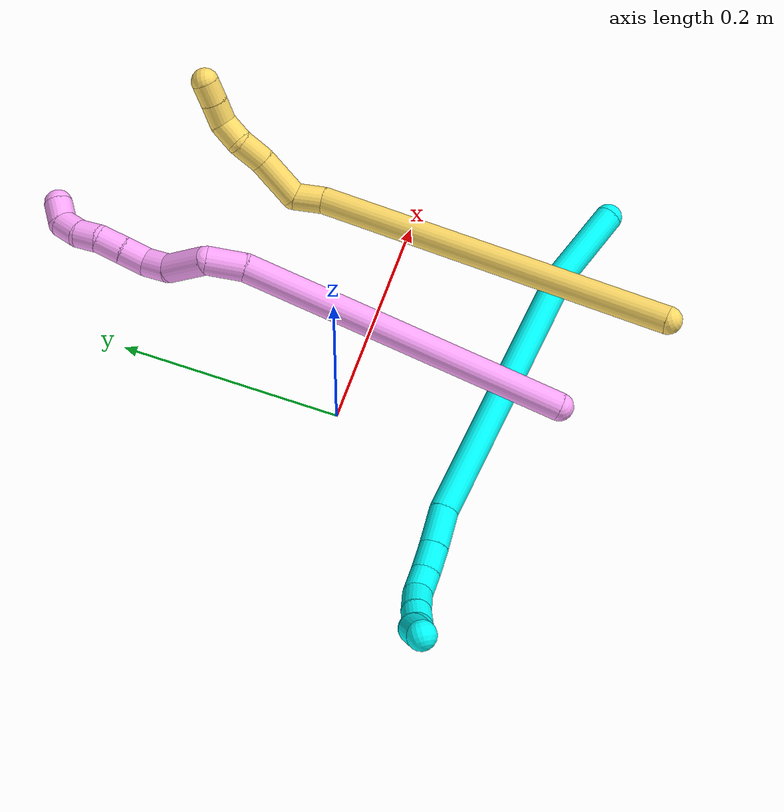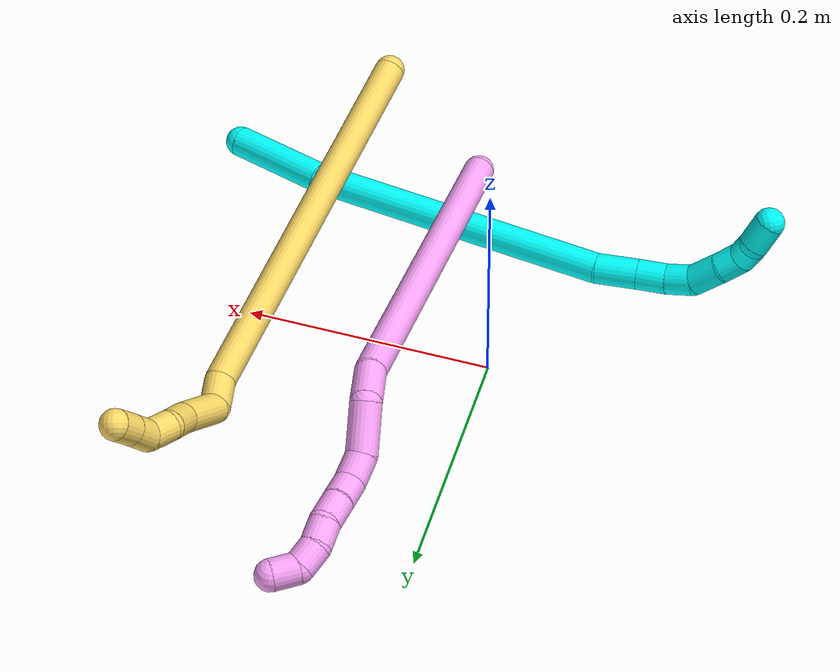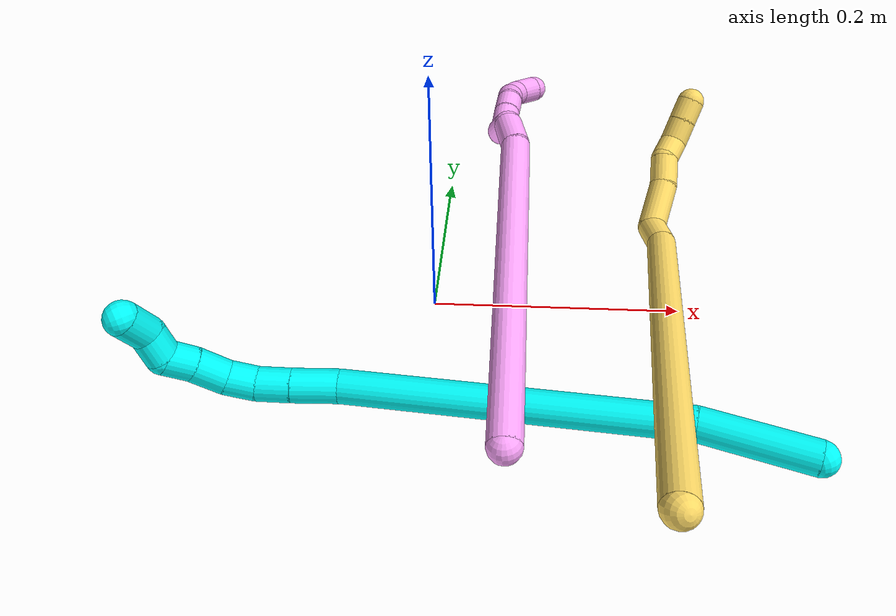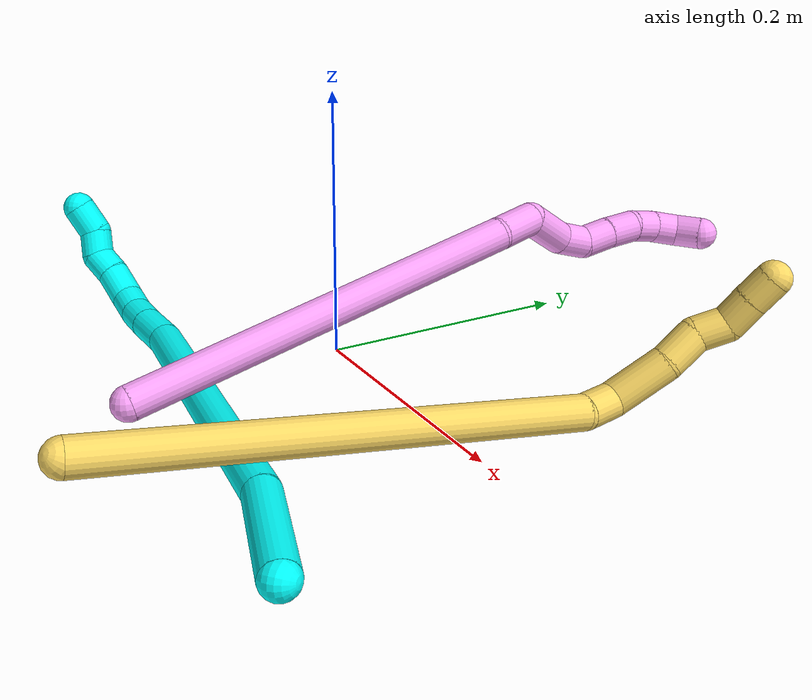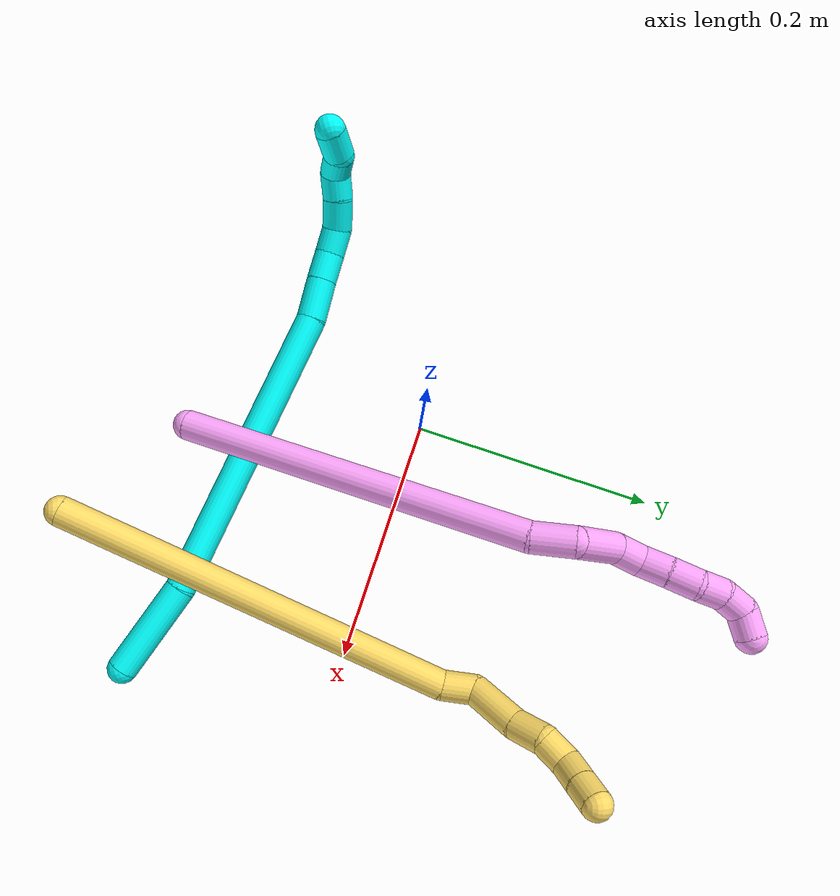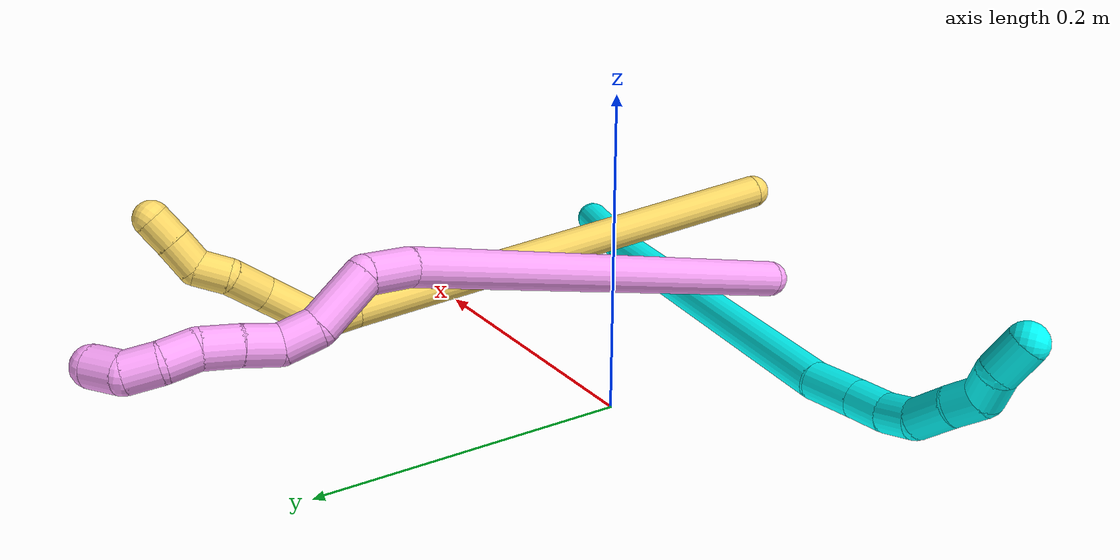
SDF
<sdf version="1.7">
 <world name="default">
  <model name="3">
   <static>0</static>
   <link name="3">
    <collision name="collision-cylinder-e_1_1_4">
     <pose>-0.027991 -0.014744 0.024667 0.538759 -0.772234 -0.223539</pose>
     <geometry><cylinder><radius>0.0125</radius><length>0.080233</length></cylinder></geometry>
     <surface>
      <friction><ode><mu>1.16</mu><mu2>1.16</mu2><slip1>0</slip1><slip2>0</slip2></ode></friction>
      <contact><ode><kp>1e+06</kp><kd>1</kd><max_vel>0</max_vel><min_depth>0.001</min_depth></ode></contact>
     </surface>
    </collision>
    <visual name="visual-cylinder-e_1_1_4">
     <pose>-0.027991 -0.014744 0.024667 0.538759 -0.772234 -0.223539</pose>
     <geometry><cylinder><radius>0.0125</radius><length>0.080233</length></cylinder></geometry>
     <material><ambient>0.003922 1 0.996078 1</ambient></material>
    </visual>
    <collision name="collision-cylinder-e_2_4_5">
     <pose>-0.12638 -0.070525 0.143132 0.4124 -0.60236 -0.129768</pose>
     <geometry><cylinder><radius>0.0125</radius><length>0.2485</length></cylinder></geometry>
     <surface>
      <friction><ode><mu>1.16</mu><mu2>1.16</mu2><slip1>0</slip1><slip2>0</slip2></ode></friction>
      <contact><ode><kp>1e+06</kp><kd>1</kd><max_vel>0</max_vel><min_depth>0.001</min_depth></ode></contact>
     </surface>
    </collision>
    <visual name="visual-cylinder-e_2_4_5">
     <pose>-0.12638 -0.070525 0.143132 0.4124 -0.60236 -0.129768</pose>
     <geometry><cylinder><radius>0.0125</radius><length>0.2485</length></cylinder></geometry>
     <material><ambient>0.003922 1 0.996078 1</ambient></material>
    </visual>
    <collision name="collision-cylinder-e_3_5_6">
     <pose>-0.204993 -0.114925 0.251573 0.225878 -0.500317 -0.057945</pose>
     <geometry><cylinder><radius>0.0125</radius><length>0.034245</length></cylinder></geometry>
     <surface>
      <friction><ode><mu>1.16</mu><mu2>1.16</mu2><slip1>0</slip1><slip2>0</slip2></ode></friction>
      <contact><ode><kp>1e+06</kp><kd>1</kd><max_vel>0</max_vel><min_depth>0.001</min_depth></ode></contact>
     </surface>
    </collision>
    <visual name="visual-cylinder-e_3_5_6">
     <pose>-0.204993 -0.114925 0.251573 0.225878 -0.500317 -0.057945</pose>
     <geometry><cylinder><radius>0.0125</radius><length>0.034245</length></cylinder></geometry>
     <material><ambient>0.003922 1 0.996078 1</ambient></material>
    </visual>
    <collision name="collision-cylinder-e_4_6_7">
     <pose>-0.219396 -0.120826 0.276358 0.245019 -0.534486 -0.067396</pose>
     <geometry><cylinder><radius>0.0125</radius><length>0.0243</length></cylinder></geometry>
     <surface>
      <friction><ode><mu>1.16</mu><mu2>1.16</mu2><slip1>0</slip1><slip2>0</slip2></ode></friction>
      <contact><ode><kp>1e+06</kp><kd>1</kd><max_vel>0</max_vel><min_depth>0.001</min_depth></ode></contact>
     </surface>
    </collision>
    <visual name="visual-cylinder-e_4_6_7">
     <pose>-0.219396 -0.120826 0.276358 0.245019 -0.534486 -0.067396</pose>
     <geometry><cylinder><radius>0.0125</radius><length>0.0243</length></cylinder></geometry>
     <material><ambient>0.003922 1 0.996078 1</ambient></material>
    </visual>
    <collision name="collision-cylinder-e_5_7_8">
     <pose>-0.232432 -0.123976 0.295166 0.070738 -0.667558 -0.024538</pose>
     <geometry><cylinder><radius>0.0125</radius><length>0.022119</length></cylinder></geometry>
     <surface>
      <friction><ode><mu>1.16</mu><mu2>1.16</mu2><slip1>0</slip1><slip2>0</slip2></ode></friction>
      <contact><ode><kp>1e+06</kp><kd>1</kd><max_vel>0</max_vel><min_depth>0.001</min_depth></ode></contact>
     </surface>
    </collision>
    <visual name="visual-cylinder-e_5_7_8">
     <pose>-0.232432 -0.123976 0.295166 0.070738 -0.667558 -0.024538</pose>
     <geometry><cylinder><radius>0.0125</radius><length>0.022119</length></cylinder></geometry>
     <material><ambient>0.003922 1 0.996078 1</ambient></material>
    </visual>
    <collision name="collision-cylinder-e_6_8_9">
     <pose>-0.247185 -0.119418 0.312746 -0.525637 -0.654329 0.182099</pose>
     <geometry><cylinder><radius>0.0125</radius><length>0.025982</length></cylinder></geometry>
     <surface>
      <friction><ode><mu>1.16</mu><mu2>1.16</mu2><slip1>0</slip1><slip2>0</slip2></ode></friction>
      <contact><ode><kp>1e+06</kp><kd>1</kd><max_vel>0</max_vel><min_depth>0.001</min_depth></ode></contact>
     </surface>
    </collision>
    <visual name="visual-cylinder-e_6_8_9">
     <pose>-0.247185 -0.119418 0.312746 -0.525637 -0.654329 0.182099</pose>
     <geometry><cylinder><radius>0.0125</radius><length>0.025982</length></cylinder></geometry>
     <material><ambient>0.003922 1 0.996078 1</ambient></material>
    </visual>
    <collision name="collision-cylinder-e_7_9_10">
     <pose>-0.260072 -0.109942 0.3296 -0.496836 -0.50406 0.130451</pose>
     <geometry><cylinder><radius>0.0125</radius><length>0.020624</length></cylinder></geometry>
     <surface>
      <friction><ode><mu>1.16</mu><mu2>1.16</mu2><slip1>0</slip1><slip2>0</slip2></ode></friction>
      <contact><ode><kp>1e+06</kp><kd>1</kd><max_vel>0</max_vel><min_depth>0.001</min_depth></ode></contact>
     </surface>
    </collision>
    <visual name="visual-cylinder-e_7_9_10">
     <pose>-0.260072 -0.109942 0.3296 -0.496836 -0.50406 0.130451</pose>
     <geometry><cylinder><radius>0.0125</radius><length>0.020624</length></cylinder></geometry>
     <material><ambient>0.003922 1 0.996078 1</ambient></material>
    </visual>
    <collision name="collision-cylinder-e_8_10_11">
     <pose>-0.273004 -0.099441 0.339585 -1.25173 -0.883508 0.658755</pose>
     <geometry><cylinder><radius>0.0125</radius><length>0.020573</length></cylinder></geometry>
     <surface>
      <friction><ode><mu>1.16</mu><mu2>1.16</mu2><slip1>0</slip1><slip2>0</slip2></ode></friction>
      <contact><ode><kp>1e+06</kp><kd>1</kd><max_vel>0</max_vel><min_depth>0.001</min_depth></ode></contact>
     </surface>
    </collision>
    <visual name="visual-cylinder-e_8_10_11">
     <pose>-0.273004 -0.099441 0.339585 -1.25173 -0.883508 0.658755</pose>
     <geometry><cylinder><radius>0.0125</radius><length>0.020573</length></cylinder></geometry>
     <material><ambient>0.003922 1 0.996078 1</ambient></material>
    </visual>
    <collision name="collision-cylinder-e_9_11_2">
     <pose>-0.285822 -0.084216 0.347286 -1.01129 -0.428544 0.239808</pose>
     <geometry><cylinder><radius>0.0125</radius><length>0.023423</length></cylinder></geometry>
     <surface>
      <friction><ode><mu>1.16</mu><mu2>1.16</mu2><slip1>0</slip1><slip2>0</slip2></ode></friction>
      <contact><ode><kp>1e+06</kp><kd>1</kd><max_vel>0</max_vel><min_depth>0.001</min_depth></ode></contact>
     </surface>
    </collision>
    <visual name="visual-cylinder-e_9_11_2">
     <pose>-0.285822 -0.084216 0.347286 -1.01129 -0.428544 0.239808</pose>
     <geometry><cylinder><radius>0.0125</radius><length>0.023423</length></cylinder></geometry>
     <material><ambient>0.003922 1 0.996078 1</ambient></material>
    </visual>
    <collision name="collision-sphere-2">
     <pose>-0.290689 -0.075188 0.35294 0 -0 0</pose>
     <geometry><sphere><radius>0.0125</radius></sphere></geometry>
     <surface>
      <friction><ode><mu>1.16</mu><mu2>1.16</mu2><slip1>0</slip1><slip2>0</slip2></ode></friction>
      <contact><ode><kp>1e+06</kp><kd>1</kd><max_vel>0</max_vel><min_depth>0.001</min_depth></ode></contact>
     </surface>
    </collision>
    <visual name="visual-sphere-2">
     <pose>-0.290689 -0.075188 0.35294 0 -0 0</pose>
     <geometry><sphere><radius>0.0125</radius></sphere></geometry>
     <material><ambient>0.003922 1 0.996078 1</ambient></material>
    </visual>
    <collision name="collision-sphere-11">
     <pose>-0.280955 -0.093245 0.341632 0 -0 0</pose>
     <geometry><sphere><radius>0.0125</radius></sphere></geometry>
     <surface>
      <friction><ode><mu>1.16</mu><mu2>1.16</mu2><slip1>0</slip1><slip2>0</slip2></ode></friction>
      <contact><ode><kp>1e+06</kp><kd>1</kd><max_vel>0</max_vel><min_depth>0.001</min_depth></ode></contact>
     </surface>
    </collision>
    <visual name="visual-sphere-11">
     <pose>-0.280955 -0.093245 0.341632 0 -0 0</pose>
     <geometry><sphere><radius>0.0125</radius></sphere></geometry>
     <material><ambient>0.003922 1 0.996078 1</ambient></material>
    </visual>
    <collision name="collision-sphere-10">
     <pose>-0.265053 -0.105638 0.337537 0 -0 0</pose>
     <geometry><sphere><radius>0.0125</radius></sphere></geometry>
     <surface>
      <friction><ode><mu>1.16</mu><mu2>1.16</mu2><slip1>0</slip1><slip2>0</slip2></ode></friction>
      <contact><ode><kp>1e+06</kp><kd>1</kd><max_vel>0</max_vel><min_depth>0.001</min_depth></ode></contact>
     </surface>
    </collision>
    <visual name="visual-sphere-10">
     <pose>-0.265053 -0.105638 0.337537 0 -0 0</pose>
     <geometry><sphere><radius>0.0125</radius></sphere></geometry>
     <material><ambient>0.003922 1 0.996078 1</ambient></material>
    </visual>
    <collision name="collision-sphere-9">
     <pose>-0.255092 -0.114246 0.321662 0 -0 0</pose>
     <geometry><sphere><radius>0.0125</radius></sphere></geometry>
     <surface>
      <friction><ode><mu>1.16</mu><mu2>1.16</mu2><slip1>0</slip1><slip2>0</slip2></ode></friction>
      <contact><ode><kp>1e+06</kp><kd>1</kd><max_vel>0</max_vel><min_depth>0.001</min_depth></ode></contact>
     </surface>
    </collision>
    <visual name="visual-sphere-9">
     <pose>-0.255092 -0.114246 0.321662 0 -0 0</pose>
     <geometry><sphere><radius>0.0125</radius></sphere></geometry>
     <material><ambient>0.003922 1 0.996078 1</ambient></material>
    </visual>
    <collision name="collision-sphere-4">
     <pose>-0.055982 -0.029489 0.049334 0 -0 0</pose>
     <geometry><sphere><radius>0.0125</radius></sphere></geometry>
     <surface>
      <friction><ode><mu>1.16</mu><mu2>1.16</mu2><slip1>0</slip1><slip2>0</slip2></ode></friction>
      <contact><ode><kp>1e+06</kp><kd>1</kd><max_vel>0</max_vel><min_depth>0.001</min_depth></ode></contact>
     </surface>
    </collision>
    <visual name="visual-sphere-4">
     <pose>-0.055982 -0.029489 0.049334 0 -0 0</pose>
     <geometry><sphere><radius>0.0125</radius></sphere></geometry>
     <material><ambient>0.003922 1 0.996078 1</ambient></material>
    </visual>
    <collision name="collision-sphere-1">
     <geometry><sphere><radius>0.0125</radius></sphere></geometry>
     <surface>
      <friction><ode><mu>1.16</mu><mu2>1.16</mu2><slip1>0</slip1><slip2>0</slip2></ode></friction>
      <contact><ode><kp>1e+06</kp><kd>1</kd><max_vel>0</max_vel><min_depth>0.001</min_depth></ode></contact>
     </surface>
    </collision>
    <visual name="visual-sphere-1">
     <geometry><sphere><radius>0.0125</radius></sphere></geometry>
     <material><ambient>0.003922 1 0.996078 1</ambient></material>
    </visual>
    <collision name="collision-sphere-8">
     <pose>-0.239278 -0.12459 0.303829 0 -0 0</pose>
     <geometry><sphere><radius>0.0125</radius></sphere></geometry>
     <surface>
      <friction><ode><mu>1.16</mu><mu2>1.16</mu2><slip1>0</slip1><slip2>0</slip2></ode></friction>
      <contact><ode><kp>1e+06</kp><kd>1</kd><max_vel>0</max_vel><min_depth>0.001</min_depth></ode></contact>
     </surface>
    </collision>
    <visual name="visual-sphere-8">
     <pose>-0.239278 -0.12459 0.303829 0 -0 0</pose>
     <geometry><sphere><radius>0.0125</radius></sphere></geometry>
     <material><ambient>0.003922 1 0.996078 1</ambient></material>
    </visual>
    <collision name="collision-sphere-5">
     <pose>-0.196779 -0.11156 0.236931 0 -0 0</pose>
     <geometry><sphere><radius>0.0125</radius></sphere></geometry>
     <surface>
      <friction><ode><mu>1.16</mu><mu2>1.16</mu2><slip1>0</slip1><slip2>0</slip2></ode></friction>
      <contact><ode><kp>1e+06</kp><kd>1</kd><max_vel>0</max_vel><min_depth>0.001</min_depth></ode></contact>
     </surface>
    </collision>
    <visual name="visual-sphere-5">
     <pose>-0.196779 -0.11156 0.236931 0 -0 0</pose>
     <geometry><sphere><radius>0.0125</radius></sphere></geometry>
     <material><ambient>0.003922 1 0.996078 1</ambient></material>
    </visual>
    <collision name="collision-sphere-6">
     <pose>-0.213207 -0.11829 0.266215 0 -0 0</pose>
     <geometry><sphere><radius>0.0125</radius></sphere></geometry>
     <surface>
      <friction><ode><mu>1.16</mu><mu2>1.16</mu2><slip1>0</slip1><slip2>0</slip2></ode></friction>
      <contact><ode><kp>1e+06</kp><kd>1</kd><max_vel>0</max_vel><min_depth>0.001</min_depth></ode></contact>
     </surface>
    </collision>
    <visual name="visual-sphere-6">
     <pose>-0.213207 -0.11829 0.266215 0 -0 0</pose>
     <geometry><sphere><radius>0.0125</radius></sphere></geometry>
     <material><ambient>0.003922 1 0.996078 1</ambient></material>
    </visual>
    <collision name="collision-sphere-7">
     <pose>-0.225585 -0.123362 0.286502 0 -0 0</pose>
     <geometry><sphere><radius>0.0125</radius></sphere></geometry>
     <surface>
      <friction><ode><mu>1.16</mu><mu2>1.16</mu2><slip1>0</slip1><slip2>0</slip2></ode></friction>
      <contact><ode><kp>1e+06</kp><kd>1</kd><max_vel>0</max_vel><min_depth>0.001</min_depth></ode></contact>
     </surface>
    </collision>
    <visual name="visual-sphere-7">
     <pose>-0.225585 -0.123362 0.286502 0 -0 0</pose>
     <geometry><sphere><radius>0.0125</radius></sphere></geometry>
     <material><ambient>0.003922 1 0.996078 1</ambient></material>
    </visual>
    <inertial>
     <pose>-0.150483 -0.075422 0.178903 0 -0 0</pose>
     <mass>0.5</mass>
     <inertia>
      <ixx>0.000932</ixx>
      <ixy>0</ixy>
      <ixz>0</ixz>
      <iyy>0.001116</iyy>
      <iyz>0</iyz>
      <izz>0.001238</izz>
     </inertia>
    </inertial>
   </link>
   <pose>0.266066 -0.167794 0.011627 1.6744 0.60235 -0.909792</pose>
  </model>
  <model name="4">
   <static>0</static>
   <link name="4">
    <collision name="collision-cylinder-e_1_1_4">
     <pose>0.033718 0.140234 0.027922 -1.37426 0.231579 -0.190293</pose>
     <geometry><cylinder><radius>0.0125</radius><length>0.293816</length></cylinder></geometry>
     <surface>
      <friction><ode><mu>1.16</mu><mu2>1.16</mu2><slip1>0</slip1><slip2>0</slip2></ode></friction>
      <contact><ode><kp>1e+06</kp><kd>1</kd><max_vel>0</max_vel><min_depth>0.001</min_depth></ode></contact>
     </surface>
    </collision>
    <visual name="visual-cylinder-e_1_1_4">
     <pose>0.033718 0.140234 0.027922 -1.37426 0.231579 -0.190293</pose>
     <geometry><cylinder><radius>0.0125</radius><length>0.293816</length></cylinder></geometry>
     <material><ambient>1 0.65098 0.996078 1</ambient></material>
    </visual>
    <collision name="collision-cylinder-e_2_4_5">
     <pose>0.067622 0.297365 0.057531 -1.47127 0.01103 -0.009983</pose>
     <geometry><cylinder><radius>0.0125</radius><length>0.033966</length></cylinder></geometry>
     <surface>
      <friction><ode><mu>1.16</mu><mu2>1.16</mu2><slip1>0</slip1><slip2>0</slip2></ode></friction>
      <contact><ode><kp>1e+06</kp><kd>1</kd><max_vel>0</max_vel><min_depth>0.001</min_depth></ode></contact>
     </surface>
    </collision>
    <visual name="visual-cylinder-e_2_4_5">
     <pose>0.067622 0.297365 0.057531 -1.47127 0.01103 -0.009983</pose>
     <geometry><cylinder><radius>0.0125</radius><length>0.033966</length></cylinder></geometry>
     <material><ambient>1 0.65098 0.996078 1</ambient></material>
    </visual>
    <collision name="collision-cylinder-e_3_5_6">
     <pose>0.067081 0.330765 0.047564 -2.18569 -0.036072 0.069616</pose>
     <geometry><cylinder><radius>0.0125</radius><length>0.040431</length></cylinder></geometry>
     <surface>
      <friction><ode><mu>1.16</mu><mu2>1.16</mu2><slip1>0</slip1><slip2>0</slip2></ode></friction>
      <contact><ode><kp>1e+06</kp><kd>1</kd><max_vel>0</max_vel><min_depth>0.001</min_depth></ode></contact>
     </surface>
    </collision>
    <visual name="visual-cylinder-e_3_5_6">
     <pose>0.067081 0.330765 0.047564 -2.18569 -0.036072 0.069616</pose>
     <geometry><cylinder><radius>0.0125</radius><length>0.040431</length></cylinder></geometry>
     <material><ambient>1 0.65098 0.996078 1</ambient></material>
    </visual>
    <collision name="collision-cylinder-e_4_6_7">
     <pose>0.069626 0.357738 0.031993 -1.92879 0.28494 -0.407878</pose>
     <geometry><cylinder><radius>0.0125</radius><length>0.023299</length></cylinder></geometry>
     <surface>
      <friction><ode><mu>1.16</mu><mu2>1.16</mu2><slip1>0</slip1><slip2>0</slip2></ode></friction>
      <contact><ode><kp>1e+06</kp><kd>1</kd><max_vel>0</max_vel><min_depth>0.001</min_depth></ode></contact>
     </surface>
    </collision>
    <visual name="visual-cylinder-e_4_6_7">
     <pose>0.069626 0.357738 0.031993 -1.92879 0.28494 -0.407878</pose>
     <geometry><cylinder><radius>0.0125</radius><length>0.023299</length></cylinder></geometry>
     <material><ambient>1 0.65098 0.996078 1</ambient></material>
    </visual>
    <collision name="collision-cylinder-e_5_7_8">
     <pose>0.076322 0.379095 0.029729 -1.4201 0.301269 -0.259485</pose>
     <geometry><cylinder><radius>0.0125</radius><length>0.02306</length></cylinder></geometry>
     <surface>
      <friction><ode><mu>1.16</mu><mu2>1.16</mu2><slip1>0</slip1><slip2>0</slip2></ode></friction>
      <contact><ode><kp>1e+06</kp><kd>1</kd><max_vel>0</max_vel><min_depth>0.001</min_depth></ode></contact>
     </surface>
    </collision>
    <visual name="visual-cylinder-e_5_7_8">
     <pose>0.076322 0.379095 0.029729 -1.4201 0.301269 -0.259485</pose>
     <geometry><cylinder><radius>0.0125</radius><length>0.02306</length></cylinder></geometry>
     <material><ambient>1 0.65098 0.996078 1</ambient></material>
    </visual>
    <collision name="collision-cylinder-e_6_8_9">
     <pose>0.083429 0.401022 0.032184 -1.49828 0.321324 -0.299176</pose>
     <geometry><cylinder><radius>0.0125</radius><length>0.023336</length></cylinder></geometry>
     <surface>
      <friction><ode><mu>1.16</mu><mu2>1.16</mu2><slip1>0</slip1><slip2>0</slip2></ode></friction>
      <contact><ode><kp>1e+06</kp><kd>1</kd><max_vel>0</max_vel><min_depth>0.001</min_depth></ode></contact>
     </surface>
    </collision>
    <visual name="visual-cylinder-e_6_8_9">
     <pose>0.083429 0.401022 0.032184 -1.49828 0.321324 -0.299176</pose>
     <geometry><cylinder><radius>0.0125</radius><length>0.023336</length></cylinder></geometry>
     <material><ambient>1 0.65098 0.996078 1</ambient></material>
    </visual>
    <collision name="collision-cylinder-e_7_9_10">
     <pose>0.089364 0.421748 0.030808 -1.792 0.222983 -0.278053</pose>
     <geometry><cylinder><radius>0.0125</radius><length>0.020354</length></cylinder></geometry>
     <surface>
      <friction><ode><mu>1.16</mu><mu2>1.16</mu2><slip1>0</slip1><slip2>0</slip2></ode></friction>
      <contact><ode><kp>1e+06</kp><kd>1</kd><max_vel>0</max_vel><min_depth>0.001</min_depth></ode></contact>
     </surface>
    </collision>
    <visual name="visual-cylinder-e_7_9_10">
     <pose>0.089364 0.421748 0.030808 -1.792 0.222983 -0.278053</pose>
     <geometry><cylinder><radius>0.0125</radius><length>0.020354</length></cylinder></geometry>
     <material><ambient>1 0.65098 0.996078 1</ambient></material>
    </visual>
    <collision name="collision-cylinder-e_8_10_11">
     <pose>0.09678 0.439947 0.025819 -1.8897 0.522513 -0.708482</pose>
     <geometry><cylinder><radius>0.0125</radius><length>0.020698</length></cylinder></geometry>
     <surface>
      <friction><ode><mu>1.16</mu><mu2>1.16</mu2><slip1>0</slip1><slip2>0</slip2></ode></friction>
      <contact><ode><kp>1e+06</kp><kd>1</kd><max_vel>0</max_vel><min_depth>0.001</min_depth></ode></contact>
     </surface>
    </collision>
    <visual name="visual-cylinder-e_8_10_11">
     <pose>0.09678 0.439947 0.025819 -1.8897 0.522513 -0.708482</pose>
     <geometry><cylinder><radius>0.0125</radius><length>0.020698</length></cylinder></geometry>
     <material><ambient>1 0.65098 0.996078 1</ambient></material>
    </visual>
    <collision name="collision-cylinder-e_9_11_2">
     <pose>0.111632 0.452455 0.022073 -1.80059 1.17041 -1.39207</pose>
     <geometry><cylinder><radius>0.0125</radius><length>0.02104</length></cylinder></geometry>
     <surface>
      <friction><ode><mu>1.16</mu><mu2>1.16</mu2><slip1>0</slip1><slip2>0</slip2></ode></friction>
      <contact><ode><kp>1e+06</kp><kd>1</kd><max_vel>0</max_vel><min_depth>0.001</min_depth></ode></contact>
     </surface>
    </collision>
    <visual name="visual-cylinder-e_9_11_2">
     <pose>0.111632 0.452455 0.022073 -1.80059 1.17041 -1.39207</pose>
     <geometry><cylinder><radius>0.0125</radius><length>0.02104</length></cylinder></geometry>
     <material><ambient>1 0.65098 0.996078 1</ambient></material>
    </visual>
    <collision name="collision-sphere-2">
     <pose>0.12132 0.456448 0.021139 0 -0 0</pose>
     <geometry><sphere><radius>0.0125</radius></sphere></geometry>
     <surface>
      <friction><ode><mu>1.16</mu><mu2>1.16</mu2><slip1>0</slip1><slip2>0</slip2></ode></friction>
      <contact><ode><kp>1e+06</kp><kd>1</kd><max_vel>0</max_vel><min_depth>0.001</min_depth></ode></contact>
     </surface>
    </collision>
    <visual name="visual-sphere-2">
     <pose>0.12132 0.456448 0.021139 0 -0 0</pose>
     <geometry><sphere><radius>0.0125</radius></sphere></geometry>
     <material><ambient>1 0.65098 0.996078 1</ambient></material>
    </visual>
    <collision name="collision-sphere-11">
     <pose>0.101944 0.448463 0.023007 0 -0 0</pose>
     <geometry><sphere><radius>0.0125</radius></sphere></geometry>
     <surface>
      <friction><ode><mu>1.16</mu><mu2>1.16</mu2><slip1>0</slip1><slip2>0</slip2></ode></friction>
      <contact><ode><kp>1e+06</kp><kd>1</kd><max_vel>0</max_vel><min_depth>0.001</min_depth></ode></contact>
     </surface>
    </collision>
    <visual name="visual-sphere-11">
     <pose>0.101944 0.448463 0.023007 0 -0 0</pose>
     <geometry><sphere><radius>0.0125</radius></sphere></geometry>
     <material><ambient>1 0.65098 0.996078 1</ambient></material>
    </visual>
    <collision name="collision-sphere-10">
     <pose>0.091615 0.431431 0.028631 0 -0 0</pose>
     <geometry><sphere><radius>0.0125</radius></sphere></geometry>
     <surface>
      <friction><ode><mu>1.16</mu><mu2>1.16</mu2><slip1>0</slip1><slip2>0</slip2></ode></friction>
      <contact><ode><kp>1e+06</kp><kd>1</kd><max_vel>0</max_vel><min_depth>0.001</min_depth></ode></contact>
     </surface>
    </collision>
    <visual name="visual-sphere-10">
     <pose>0.091615 0.431431 0.028631 0 -0 0</pose>
     <geometry><sphere><radius>0.0125</radius></sphere></geometry>
     <material><ambient>1 0.65098 0.996078 1</ambient></material>
    </visual>
    <collision name="collision-sphere-9">
     <pose>0.087114 0.412064 0.032986 0 -0 0</pose>
     <geometry><sphere><radius>0.0125</radius></sphere></geometry>
     <surface>
      <friction><ode><mu>1.16</mu><mu2>1.16</mu2><slip1>0</slip1><slip2>0</slip2></ode></friction>
      <contact><ode><kp>1e+06</kp><kd>1</kd><max_vel>0</max_vel><min_depth>0.001</min_depth></ode></contact>
     </surface>
    </collision>
    <visual name="visual-sphere-9">
     <pose>0.087114 0.412064 0.032986 0 -0 0</pose>
     <geometry><sphere><radius>0.0125</radius></sphere></geometry>
     <material><ambient>1 0.65098 0.996078 1</ambient></material>
    </visual>
    <collision name="collision-sphere-4">
     <pose>0.067435 0.280467 0.055844 0 -0 0</pose>
     <geometry><sphere><radius>0.0125</radius></sphere></geometry>
     <surface>
      <friction><ode><mu>1.16</mu><mu2>1.16</mu2><slip1>0</slip1><slip2>0</slip2></ode></friction>
      <contact><ode><kp>1e+06</kp><kd>1</kd><max_vel>0</max_vel><min_depth>0.001</min_depth></ode></contact>
     </surface>
    </collision>
    <visual name="visual-sphere-4">
     <pose>0.067435 0.280467 0.055844 0 -0 0</pose>
     <geometry><sphere><radius>0.0125</radius></sphere></geometry>
     <material><ambient>1 0.65098 0.996078 1</ambient></material>
    </visual>
    <collision name="collision-sphere-1">
     <geometry><sphere><radius>0.0125</radius></sphere></geometry>
     <surface>
      <friction><ode><mu>1.16</mu><mu2>1.16</mu2><slip1>0</slip1><slip2>0</slip2></ode></friction>
      <contact><ode><kp>1e+06</kp><kd>1</kd><max_vel>0</max_vel><min_depth>0.001</min_depth></ode></contact>
     </surface>
    </collision>
    <visual name="visual-sphere-1">
     <geometry><sphere><radius>0.0125</radius></sphere></geometry>
     <material><ambient>1 0.65098 0.996078 1</ambient></material>
    </visual>
    <collision name="collision-sphere-8">
     <pose>0.079744 0.38998 0.031382 0 -0 0</pose>
     <geometry><sphere><radius>0.0125</radius></sphere></geometry>
     <surface>
      <friction><ode><mu>1.16</mu><mu2>1.16</mu2><slip1>0</slip1><slip2>0</slip2></ode></friction>
      <contact><ode><kp>1e+06</kp><kd>1</kd><max_vel>0</max_vel><min_depth>0.001</min_depth></ode></contact>
     </surface>
    </collision>
    <visual name="visual-sphere-8">
     <pose>0.079744 0.38998 0.031382 0 -0 0</pose>
     <geometry><sphere><radius>0.0125</radius></sphere></geometry>
     <material><ambient>1 0.65098 0.996078 1</ambient></material>
    </visual>
    <collision name="collision-sphere-5">
     <pose>0.06781 0.314263 0.059219 0 -0 0</pose>
     <geometry><sphere><radius>0.0125</radius></sphere></geometry>
     <surface>
      <friction><ode><mu>1.16</mu><mu2>1.16</mu2><slip1>0</slip1><slip2>0</slip2></ode></friction>
      <contact><ode><kp>1e+06</kp><kd>1</kd><max_vel>0</max_vel><min_depth>0.001</min_depth></ode></contact>
     </surface>
    </collision>
    <visual name="visual-sphere-5">
     <pose>0.06781 0.314263 0.059219 0 -0 0</pose>
     <geometry><sphere><radius>0.0125</radius></sphere></geometry>
     <material><ambient>1 0.65098 0.996078 1</ambient></material>
    </visual>
    <collision name="collision-sphere-6">
     <pose>0.066352 0.347267 0.03591 0 -0 0</pose>
     <geometry><sphere><radius>0.0125</radius></sphere></geometry>
     <surface>
      <friction><ode><mu>1.16</mu><mu2>1.16</mu2><slip1>0</slip1><slip2>0</slip2></ode></friction>
      <contact><ode><kp>1e+06</kp><kd>1</kd><max_vel>0</max_vel><min_depth>0.001</min_depth></ode></contact>
     </surface>
    </collision>
    <visual name="visual-sphere-6">
     <pose>0.066352 0.347267 0.03591 0 -0 0</pose>
     <geometry><sphere><radius>0.0125</radius></sphere></geometry>
     <material><ambient>1 0.65098 0.996078 1</ambient></material>
    </visual>
    <collision name="collision-sphere-7">
     <pose>0.072901 0.368209 0.028076 0 -0 0</pose>
     <geometry><sphere><radius>0.0125</radius></sphere></geometry>
     <surface>
      <friction><ode><mu>1.16</mu><mu2>1.16</mu2><slip1>0</slip1><slip2>0</slip2></ode></friction>
      <contact><ode><kp>1e+06</kp><kd>1</kd><max_vel>0</max_vel><min_depth>0.001</min_depth></ode></contact>
     </surface>
    </collision>
    <visual name="visual-sphere-7">
     <pose>0.072901 0.368209 0.028076 0 -0 0</pose>
     <geometry><sphere><radius>0.0125</radius></sphere></geometry>
     <material><ambient>1 0.65098 0.996078 1</ambient></material>
    </visual>
    <inertial>
     <pose>0.052831 0.236643 0.031778 0 -0 0</pose>
     <mass>0.5</mass>
     <inertia>
      <ixx>0.001666</ixx>
      <ixy>0</ixy>
      <ixz>0</ixz>
      <iyy>0.000137</iyy>
      <iyz>0</iyz>
      <izz>-0.002538</izz>
     </inertia>
    </inertial>
   </link>
   <pose>0.061168 -0.18133 0.025198 0.031631 -0.085998 0.210823</pose>
  </model>
  <model name="5">
   <static>0</static>
   <link name="5">
    <collision name="collision-cylinder-e_1_1_4">
     <pose>0.018215 0.09193 -0.138636 -2.55606 0.109068 -0.358316</pose>
     <geometry><cylinder><radius>0.0125</radius><length>0.334681</length></cylinder></geometry>
     <surface>
      <friction><ode><mu>1.16</mu><mu2>1.16</mu2><slip1>0</slip1><slip2>0</slip2></ode></friction>
      <contact><ode><kp>1e+06</kp><kd>1</kd><max_vel>0</max_vel><min_depth>0.001</min_depth></ode></contact>
     </surface>
    </collision>
    <visual name="visual-cylinder-e_1_1_4">
     <pose>0.018215 0.09193 -0.138636 -2.55606 0.109068 -0.358316</pose>
     <geometry><cylinder><radius>0.0125</radius><length>0.334681</length></cylinder></geometry>
     <material><ambient>1 0.858824 0.4 1</ambient></material>
    </visual>
    <collision name="collision-cylinder-e_2_4_5">
     <pose>0.033545 0.19073 -0.288992 -2.61139 -0.209328 0.738369</pose>
     <geometry><cylinder><radius>0.0125</radius><length>0.027777</length></cylinder></geometry>
     <surface>
      <friction><ode><mu>1.16</mu><mu2>1.16</mu2><slip1>0</slip1><slip2>0</slip2></ode></friction>
      <contact><ode><kp>1e+06</kp><kd>1</kd><max_vel>0</max_vel><min_depth>0.001</min_depth></ode></contact>
     </surface>
    </collision>
    <visual name="visual-cylinder-e_2_4_5">
     <pose>0.033545 0.19073 -0.288992 -2.61139 -0.209328 0.738369</pose>
     <geometry><cylinder><radius>0.0125</radius><length>0.027777</length></cylinder></geometry>
     <material><ambient>1 0.858824 0.4 1</ambient></material>
    </visual>
    <collision name="collision-cylinder-e_3_5_6">
     <pose>0.028585 0.219 -0.306778 -1.84699 -0.092985 0.122937</pose>
     <geometry><cylinder><radius>0.0125</radius><length>0.044679</length></cylinder></geometry>
     <surface>
      <friction><ode><mu>1.16</mu><mu2>1.16</mu2><slip1>0</slip1><slip2>0</slip2></ode></friction>
      <contact><ode><kp>1e+06</kp><kd>1</kd><max_vel>0</max_vel><min_depth>0.001</min_depth></ode></contact>
     </surface>
    </collision>
    <visual name="visual-cylinder-e_3_5_6">
     <pose>0.028585 0.219 -0.306778 -1.84699 -0.092985 0.122937</pose>
     <geometry><cylinder><radius>0.0125</radius><length>0.044679</length></cylinder></geometry>
     <material><ambient>1 0.858824 0.4 1</ambient></material>
    </visual>
    <collision name="collision-cylinder-e_4_6_7">
     <pose>0.022454 0.252769 -0.317147 -1.90561 -0.30033 0.419422</pose>
     <geometry><cylinder><radius>0.0125</radius><length>0.027421</length></cylinder></geometry>
     <surface>
      <friction><ode><mu>1.16</mu><mu2>1.16</mu2><slip1>0</slip1><slip2>0</slip2></ode></friction>
      <contact><ode><kp>1e+06</kp><kd>1</kd><max_vel>0</max_vel><min_depth>0.001</min_depth></ode></contact>
     </surface>
    </collision>
    <visual name="visual-cylinder-e_4_6_7">
     <pose>0.022454 0.252769 -0.317147 -1.90561 -0.30033 0.419422</pose>
     <geometry><cylinder><radius>0.0125</radius><length>0.027421</length></cylinder></geometry>
     <material><ambient>1 0.858824 0.4 1</ambient></material>
    </visual>
    <collision name="collision-cylinder-e_5_7_8">
     <pose>0.020122 0.275458 -0.325975 -1.984 0.151788 -0.231692</pose>
     <geometry><cylinder><radius>0.0125</radius><length>0.022797</length></cylinder></geometry>
     <surface>
      <friction><ode><mu>1.16</mu><mu2>1.16</mu2><slip1>0</slip1><slip2>0</slip2></ode></friction>
      <contact><ode><kp>1e+06</kp><kd>1</kd><max_vel>0</max_vel><min_depth>0.001</min_depth></ode></contact>
     </surface>
    </collision>
    <visual name="visual-cylinder-e_5_7_8">
     <pose>0.020122 0.275458 -0.325975 -1.984 0.151788 -0.231692</pose>
     <geometry><cylinder><radius>0.0125</radius><length>0.022797</length></cylinder></geometry>
     <material><ambient>1 0.858824 0.4 1</ambient></material>
    </visual>
    <collision name="collision-cylinder-e_6_8_9">
     <pose>0.020364 0.296712 -0.329126 -1.4459 -0.133602 0.117916</pose>
     <geometry><cylinder><radius>0.0125</radius><length>0.022239</length></cylinder></geometry>
     <surface>
      <friction><ode><mu>1.16</mu><mu2>1.16</mu2><slip1>0</slip1><slip2>0</slip2></ode></friction>
      <contact><ode><kp>1e+06</kp><kd>1</kd><max_vel>0</max_vel><min_depth>0.001</min_depth></ode></contact>
     </surface>
    </collision>
    <visual name="visual-cylinder-e_6_8_9">
     <pose>0.020364 0.296712 -0.329126 -1.4459 -0.133602 0.117916</pose>
     <geometry><cylinder><radius>0.0125</radius><length>0.022239</length></cylinder></geometry>
     <material><ambient>1 0.858824 0.4 1</ambient></material>
    </visual>
    <collision name="collision-cylinder-e_7_9_2">
     <pose>0.017708 0.31774 -0.326833 -1.4798 -0.115436 0.105402</pose>
     <geometry><cylinder><radius>0.0125</radius><length>0.020406</length></cylinder></geometry>
     <surface>
      <friction><ode><mu>1.16</mu><mu2>1.16</mu2><slip1>0</slip1><slip2>0</slip2></ode></friction>
      <contact><ode><kp>1e+06</kp><kd>1</kd><max_vel>0</max_vel><min_depth>0.001</min_depth></ode></contact>
     </surface>
    </collision>
    <visual name="visual-cylinder-e_7_9_2">
     <pose>0.017708 0.31774 -0.326833 -1.4798 -0.115436 0.105402</pose>
     <geometry><cylinder><radius>0.0125</radius><length>0.020406</length></cylinder></geometry>
     <material><ambient>1 0.858824 0.4 1</ambient></material>
    </visual>
    <collision name="collision-sphere-2">
     <pose>0.016532 0.327833 -0.325912 0 -0 0</pose>
     <geometry><sphere><radius>0.0125</radius></sphere></geometry>
     <surface>
      <friction><ode><mu>1.16</mu><mu2>1.16</mu2><slip1>0</slip1><slip2>0</slip2></ode></friction>
      <contact><ode><kp>1e+06</kp><kd>1</kd><max_vel>0</max_vel><min_depth>0.001</min_depth></ode></contact>
     </surface>
    </collision>
    <visual name="visual-sphere-2">
     <pose>0.016532 0.327833 -0.325912 0 -0 0</pose>
     <geometry><sphere><radius>0.0125</radius></sphere></geometry>
     <material><ambient>1 0.858824 0.4 1</ambient></material>
    </visual>
    <collision name="collision-sphere-9">
     <pose>0.018883 0.307646 -0.327753 0 -0 0</pose>
     <geometry><sphere><radius>0.0125</radius></sphere></geometry>
     <surface>
      <friction><ode><mu>1.16</mu><mu2>1.16</mu2><slip1>0</slip1><slip2>0</slip2></ode></friction>
      <contact><ode><kp>1e+06</kp><kd>1</kd><max_vel>0</max_vel><min_depth>0.001</min_depth></ode></contact>
     </surface>
    </collision>
    <visual name="visual-sphere-9">
     <pose>0.018883 0.307646 -0.327753 0 -0 0</pose>
     <geometry><sphere><radius>0.0125</radius></sphere></geometry>
     <material><ambient>1 0.858824 0.4 1</ambient></material>
    </visual>
    <collision name="collision-sphere-4">
     <pose>0.036431 0.18386 -0.277272 0 -0 0</pose>
     <geometry><sphere><radius>0.0125</radius></sphere></geometry>
     <surface>
      <friction><ode><mu>1.16</mu><mu2>1.16</mu2><slip1>0</slip1><slip2>0</slip2></ode></friction>
      <contact><ode><kp>1e+06</kp><kd>1</kd><max_vel>0</max_vel><min_depth>0.001</min_depth></ode></contact>
     </surface>
    </collision>
    <visual name="visual-sphere-4">
     <pose>0.036431 0.18386 -0.277272 0 -0 0</pose>
     <geometry><sphere><radius>0.0125</radius></sphere></geometry>
     <material><ambient>1 0.858824 0.4 1</ambient></material>
    </visual>
    <collision name="collision-sphere-1">
     <geometry><sphere><radius>0.0125</radius></sphere></geometry>
     <surface>
      <friction><ode><mu>1.16</mu><mu2>1.16</mu2><slip1>0</slip1><slip2>0</slip2></ode></friction>
      <contact><ode><kp>1e+06</kp><kd>1</kd><max_vel>0</max_vel><min_depth>0.001</min_depth></ode></contact>
     </surface>
    </collision>
    <visual name="visual-sphere-1">
     <geometry><sphere><radius>0.0125</radius></sphere></geometry>
     <material><ambient>1 0.858824 0.4 1</ambient></material>
    </visual>
    <collision name="collision-sphere-8">
     <pose>0.021845 0.285777 -0.330499 0 -0 0</pose>
     <geometry><sphere><radius>0.0125</radius></sphere></geometry>
     <surface>
      <friction><ode><mu>1.16</mu><mu2>1.16</mu2><slip1>0</slip1><slip2>0</slip2></ode></friction>
      <contact><ode><kp>1e+06</kp><kd>1</kd><max_vel>0</max_vel><min_depth>0.001</min_depth></ode></contact>
     </surface>
    </collision>
    <visual name="visual-sphere-8">
     <pose>0.021845 0.285777 -0.330499 0 -0 0</pose>
     <geometry><sphere><radius>0.0125</radius></sphere></geometry>
     <material><ambient>1 0.858824 0.4 1</ambient></material>
    </visual>
    <collision name="collision-sphere-5">
     <pose>0.030659 0.1976 -0.300712 0 -0 0</pose>
     <geometry><sphere><radius>0.0125</radius></sphere></geometry>
     <surface>
      <friction><ode><mu>1.16</mu><mu2>1.16</mu2><slip1>0</slip1><slip2>0</slip2></ode></friction>
      <contact><ode><kp>1e+06</kp><kd>1</kd><max_vel>0</max_vel><min_depth>0.001</min_depth></ode></contact>
     </surface>
    </collision>
    <visual name="visual-sphere-5">
     <pose>0.030659 0.1976 -0.300712 0 -0 0</pose>
     <geometry><sphere><radius>0.0125</radius></sphere></geometry>
     <material><ambient>1 0.858824 0.4 1</ambient></material>
    </visual>
    <collision name="collision-sphere-6">
     <pose>0.02651 0.2404 -0.312843 0 -0 0</pose>
     <geometry><sphere><radius>0.0125</radius></sphere></geometry>
     <surface>
      <friction><ode><mu>1.16</mu><mu2>1.16</mu2><slip1>0</slip1><slip2>0</slip2></ode></friction>
      <contact><ode><kp>1e+06</kp><kd>1</kd><max_vel>0</max_vel><min_depth>0.001</min_depth></ode></contact>
     </surface>
    </collision>
    <visual name="visual-sphere-6">
     <pose>0.02651 0.2404 -0.312843 0 -0 0</pose>
     <geometry><sphere><radius>0.0125</radius></sphere></geometry>
     <material><ambient>1 0.858824 0.4 1</ambient></material>
    </visual>
    <collision name="collision-sphere-7">
     <pose>0.018398 0.265139 -0.32145 0 -0 0</pose>
     <geometry><sphere><radius>0.0125</radius></sphere></geometry>
     <surface>
      <friction><ode><mu>1.16</mu><mu2>1.16</mu2><slip1>0</slip1><slip2>0</slip2></ode></friction>
      <contact><ode><kp>1e+06</kp><kd>1</kd><max_vel>0</max_vel><min_depth>0.001</min_depth></ode></contact>
     </surface>
    </collision>
    <visual name="visual-sphere-7">
     <pose>0.018398 0.265139 -0.32145 0 -0 0</pose>
     <geometry><sphere><radius>0.0125</radius></sphere></geometry>
     <material><ambient>1 0.858824 0.4 1</ambient></material>
    </visual>
    <inertial>
     <pose>0.020388 0.144286 -0.196498 0 -0 0</pose>
     <mass>0.5</mass>
     <inertia>
      <ixx>0.001851</ixx>
      <ixy>0</ixy>
      <ixz>0</ixz>
      <iyy>-0.003451</iyy>
      <iyz>0</iyz>
      <izz>-0.002106</izz>
     </inertia>
    </inertial>
   </link>
   <pose>0.159039 -0.247165 0.051117 0.916208 0.550518 -0.05428</pose>
  </model>
 </world>
</sdf>
